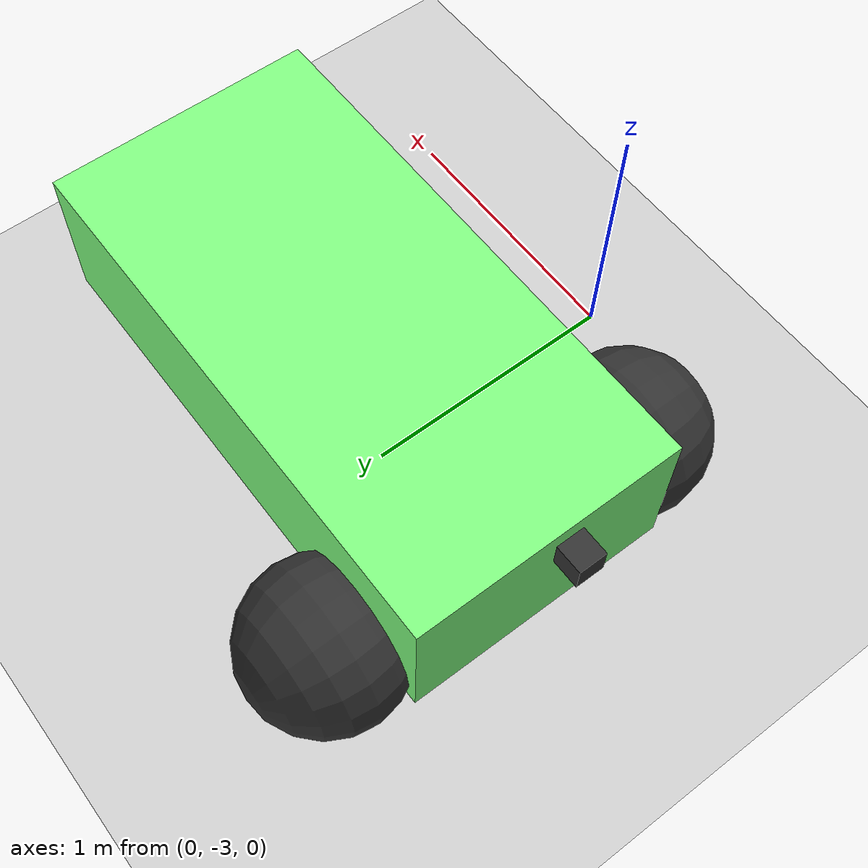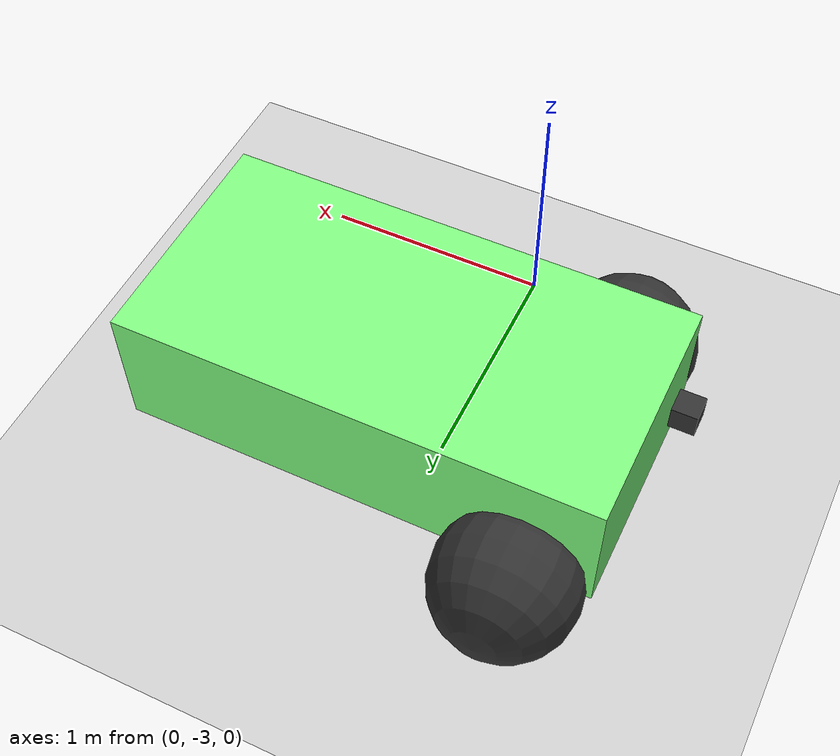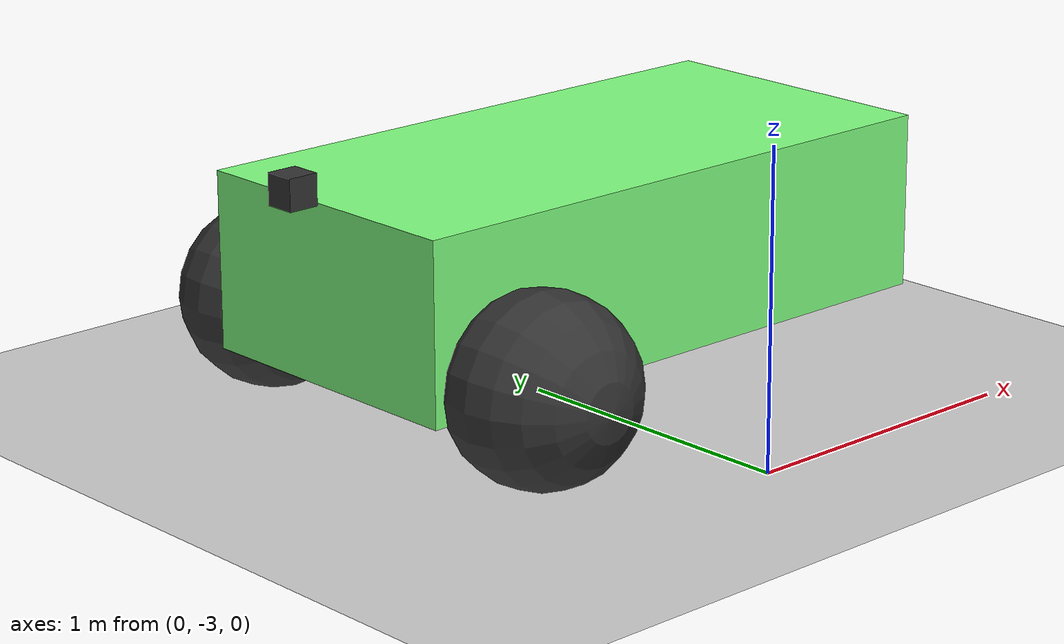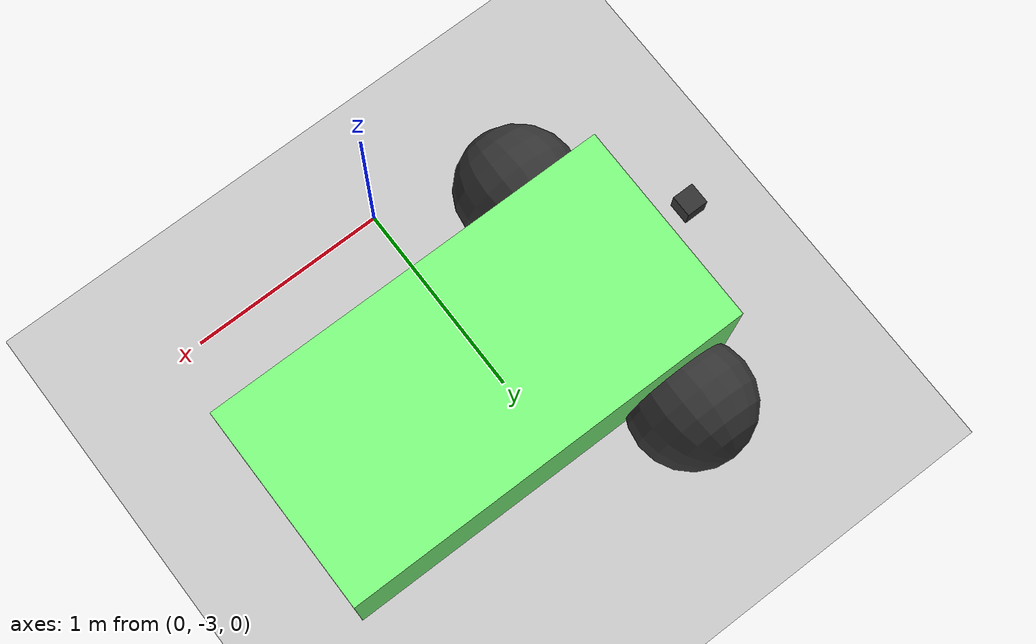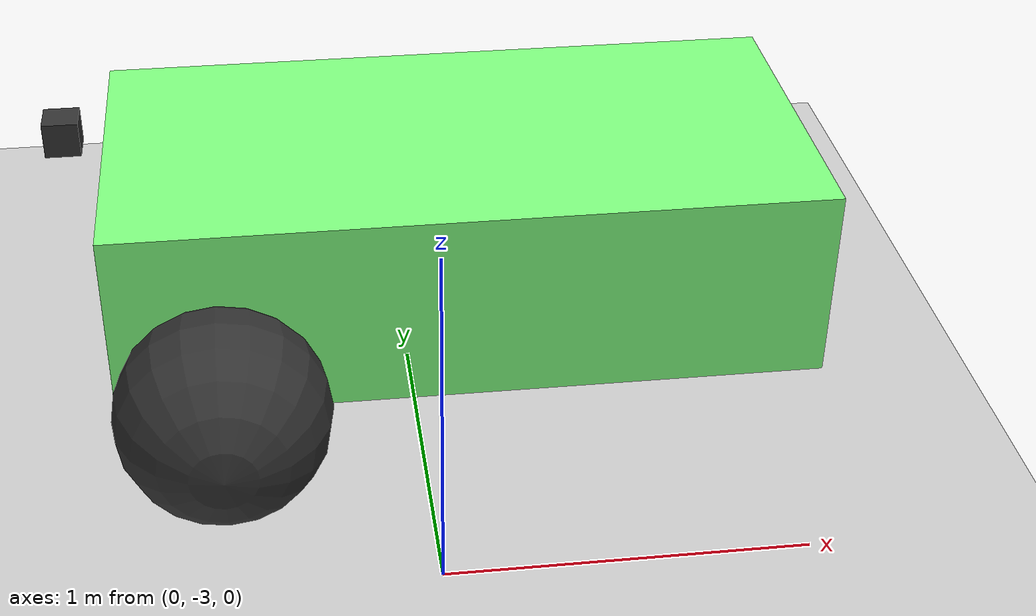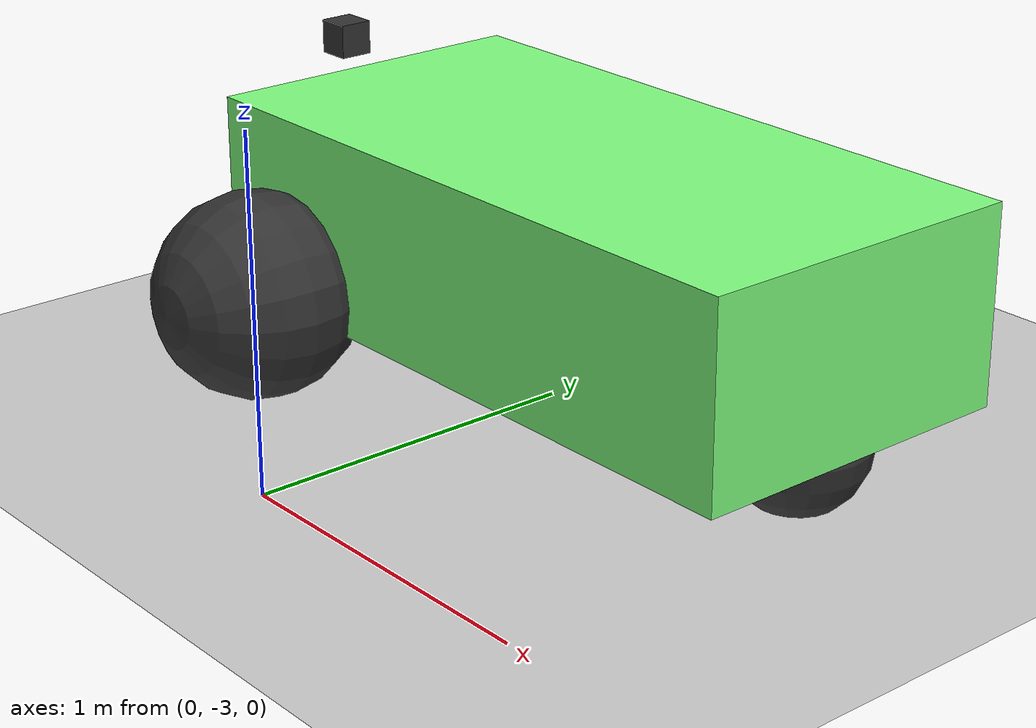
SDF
<sdf version="1.6">
 <world name="complete_robot_sim">
  <physics name="1ms" type="ignored">
   <max_step_size>0.001</max_step_size>
   <real_time_factor>1.0</real_time_factor>
  </physics>
  <plugin filename="ignition-gazebo-physics-system" name="ignition::gazebo::systems::Physics"/>
  <plugin filename="ignition-gazebo-sensors-system" name="ignition::gazebo::systems::Sensors">
   <render_engine>ogre2</render_engine>
  </plugin>
  <plugin filename="ignition-gazebo-user-commands-system" name="ignition::gazebo::systems::UserCommands"/>
  <plugin filename="ignition-gazebo-scene-broadcaster-system" name="ignition::gazebo::systems::SceneBroadcaster"/>
  <light type="directional" name="sun">
   <pose>0 0 10 0 0 0</pose>
   <diffuse>1 1 1 1</diffuse>
   <specular>0.5 0.5 0.5 1</specular>
   <attenuation>
    <range>1000</range>
    <constant>0.9</constant>
    <linear>0.01</linear>
    <quadratic>0.001</quadratic>
   </attenuation>
   <direction>-0.5 0.1 -0.9</direction>
  </light>
  <model name="ground_plane">
   <static>true</static>
   <link name="link">
    <collision name="collision">
     <geometry><plane><normal>0 0 1</normal><size>1000 1000</size></plane></geometry>
    </collision>
    <visual name="visual">
     <geometry><plane><normal>0 0 1</normal><size>1000 1000</size></plane></geometry>
     <material>
      <ambient>0.8 0.8 0.8 1</ambient>
      <diffuse>0.8 0.8 0.8 1</diffuse>
      <specular>0.8 0.8 0.8 1</specular>
     </material>
    </visual>
   </link>
  </model>
  <model name="vehicle_green">
   <pose>0 -2 0.325 0 -0 3.14</pose>
   <plugin filename="ignition-gazebo-joint-state-publisher-system" name="ignition::gazebo::systems::JointStatePublisher"/>
   <link name="chassis">
    <pose>-0.151427 -0 0.175 0 -0 0</pose>
    <inertial>
     <mass>1.14395</mass>
     <inertia>
      <ixx>0.126164</ixx>
      <ixy>0</ixy>
      <ixz>0</ixz>
      <iyy>0.416519</iyy>
      <iyz>0</iyz>
      <izz>0.481014</izz>
     </inertia>
    </inertial>
    <visual name="visual">
     <geometry><box><size>2.01142 1 0.568726</size></box></geometry>
     <material>
      <ambient>0.5 1.0 0.5 1</ambient>
      <diffuse>0.5 1.0 0.5 1</diffuse>
      <specular>0.0 1.0 0.0 1</specular>
     </material>
    </visual>
    <collision name="collision"><geometry><box><size>2.01142 1 0.568726</size></box></geometry></collision>
   </link>
   <link name="left_wheel">
    <pose>0.554283 0.625029 -0.025 -1.5707 0 0</pose>
    <inertial>
     <mass>2</mass>
     <inertia><ixx>0.145833</ixx><ixy>0</ixy><ixz>0</ixz><iyy>0.145833</iyy><iyz>0</iyz><izz>0.125</izz></inertia>
    </inertial>
    <visual name="visual">
     <geometry><sphere><radius>0.3</radius></sphere></geometry>
     <material>
      <ambient>0.2 0.2 0.2 1</ambient>
      <diffuse>0.2 0.2 0.2 1</diffuse>
      <specular>0.2 0.2 0.2 1</specular>
     </material>
    </visual>
    <collision name="collision"><geometry><sphere><radius>0.3</radius></sphere></geometry></collision>
   </link>
   <link name="right_wheel">
    <pose>0.554282 -0.625029 -0.025 -1.5707 0 0</pose>
    <inertial>
     <mass>2</mass>
     <inertia><ixx>0.145833</ixx><ixy>0</ixy><ixz>0</ixz><iyy>0.145833</iyy><iyz>0</iyz><izz>0.125</izz></inertia>
    </inertial>
    <visual name="visual">
     <geometry><sphere><radius>0.3</radius></sphere></geometry>
     <material>
      <ambient>0.2 0.2 0.2 1</ambient>
      <diffuse>0.2 0.2 0.2 1</diffuse>
      <specular>0.2 0.2 0.2 1</specular>
     </material>
    </visual>
    <collision name="collision"><geometry><sphere><radius>0.3</radius></sphere></geometry></collision>
   </link>
   <link name="caster">
    <pose>-0.957138 -0 -0.125 0 -0 0</pose>
    <inertial>
     <mass>1</mass>
     <inertia><ixx>0.1</ixx><ixy>0</ixy><ixz>0</ixz><iyy>0.1</iyy><iyz>0</iyz><izz>0.1</izz></inertia>
    </inertial>
    <visual name="visual">
     <geometry><sphere><radius>0.2</radius></sphere></geometry>
     <material>
      <ambient>0.2 0.2 0.2 1</ambient>
      <diffuse>0.2 0.2 0.2 1</diffuse>
      <specular>0.2 0.2 0.2 1</specular>
     </material>
    </visual>
    <collision name="collision"><geometry><sphere><radius>0.2</radius></sphere></geometry></collision>
   </link>
   <link name="lidar_sensor">
    <pose>0.957138 -0 0.525 0 -0 0</pose>
    <inertial>
     <mass>0.1</mass>
     <inertia><ixx>0.000166667</ixx><iyy>0.000166667</iyy><izz>0.000166667</izz></inertia>
    </inertial>
    <collision name="collision">
     <geometry><box><size>0.1 0.1 0.1</size></box></geometry>
     <material>
      <ambient>0.2 0.2 0.2 1</ambient>
      <diffuse>0.2 0.2 0.2 1</diffuse>
      <specular>0.2 0.2 0.2 1</specular>
     </material>
    </collision>
    <visual name="visual">
     <geometry><box><size>0.1 0.1 0.1</size></box></geometry>
     <material>
      <ambient>0.2 0.2 0.2 1</ambient>
      <diffuse>0.2 0.2 0.2 1</diffuse>
      <specular>0.2 0.2 0.2 1</specular>
     </material>
    </visual>
    <sensor name="gpu_lidar" type="gpu_lidar">
     <topic>lidar</topic>
     <update_rate>10</update_rate>
     <lidar>
      <scan>
       <horizontal>
        <samples>640</samples>
        <resolution>1</resolution>
        <min_angle>-1.396263</min_angle>
        <max_angle>1.396263</max_angle>
       </horizontal>
       <vertical>
        <samples>16</samples>
        <resolution>1</resolution>
        <min_angle>-0.261799</min_angle>
        <max_angle>0.261799</max_angle>
       </vertical>
      </scan>
      <range><min>0.08</min><max>10.0</max><resolution>0.01</resolution></range>
     </lidar>
     <alwaysOn>1</alwaysOn>
     <visualize>true</visualize>
    </sensor>
   </link>
   <joint name="left_wheel_joint" type="revolute">
    <parent>chassis</parent>
    <child>left_wheel</child>
    <axis><xyz>0 0 1</xyz><limit><lower>-1.79769e+308</lower><upper>1.79769e+308</upper></limit></axis>
   </joint>
   <joint name="right_wheel_joint" type="revolute">
    <parent>chassis</parent>
    <child>right_wheel</child>
    <axis><xyz>0 0 1</xyz><limit><lower>-1.79769e+308</lower><upper>1.79769e+308</upper></limit></axis>
   </joint>
   <joint name="lidar_sensor_joint" type="fixed"><parent>chassis</parent><child>lidar_sensor</child></joint>
   <joint name="caster_wheel" type="ball"><parent>chassis</parent><child>caster</child></joint>
   <plugin filename="ignition-gazebo-diff-drive-system" name="ignition::gazebo::systems::DiffDrive">
    <left_joint>left_wheel_joint</left_joint>
    <right_joint>right_wheel_joint</right_joint>
    <wheel_separation>1.25</wheel_separation>
    <wheel_radius>0.3</wheel_radius>
    <max_linear_acceleration>1</max_linear_acceleration>
    <min_linear_acceleration>-1</min_linear_acceleration>
    <max_angular_acceleration>2</max_angular_acceleration>
    <min_angular_acceleration>-2</min_angular_acceleration>
    <max_linear_velocity>0.5</max_linear_velocity>
    <min_linear_velocity>-0.5</min_linear_velocity>
    <max_angular_velocity>1</max_angular_velocity>
    <min_angular_velocity>-1</min_angular_velocity>
   </plugin>
  </model>
 </world>
</sdf>
